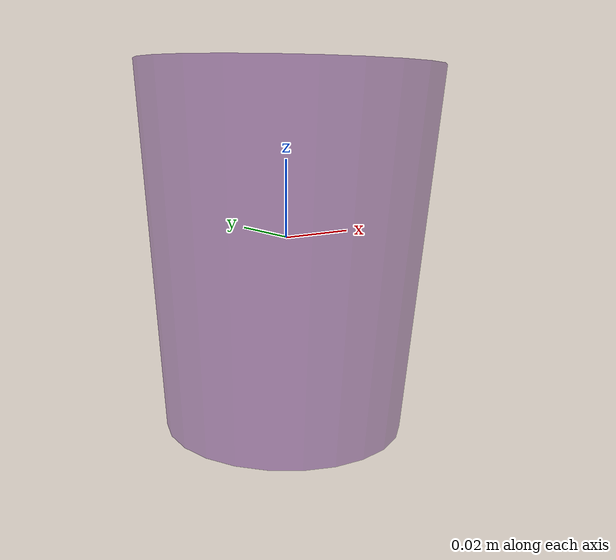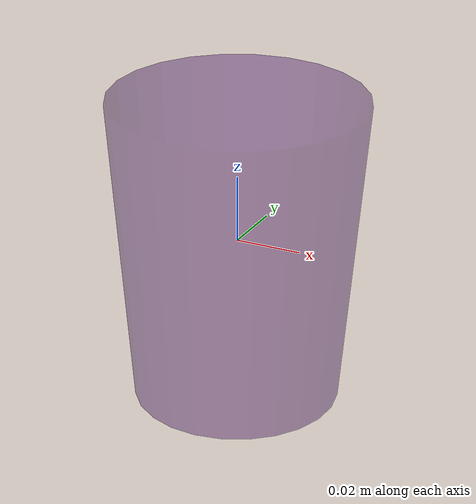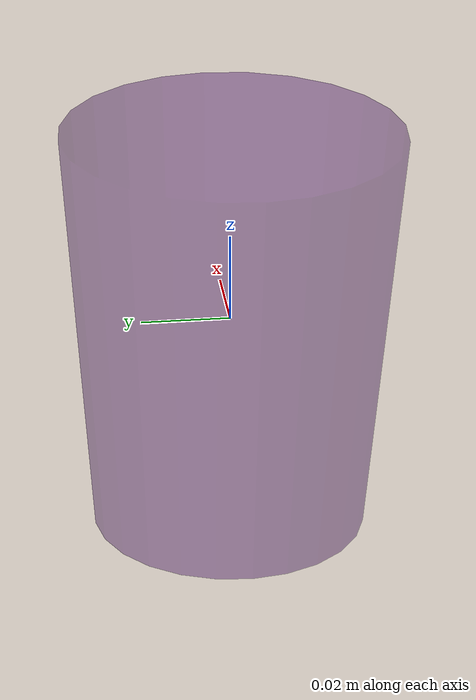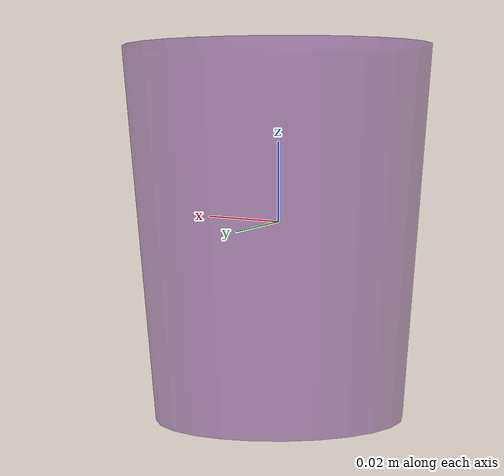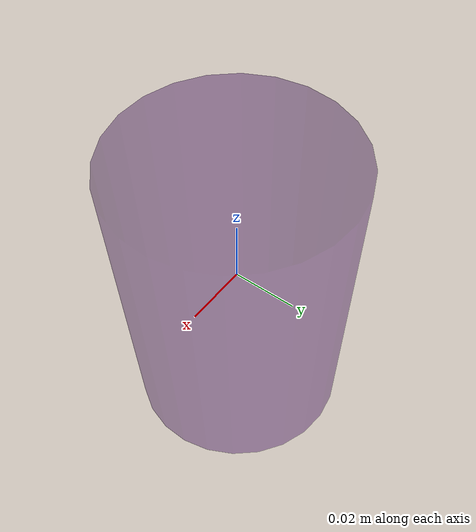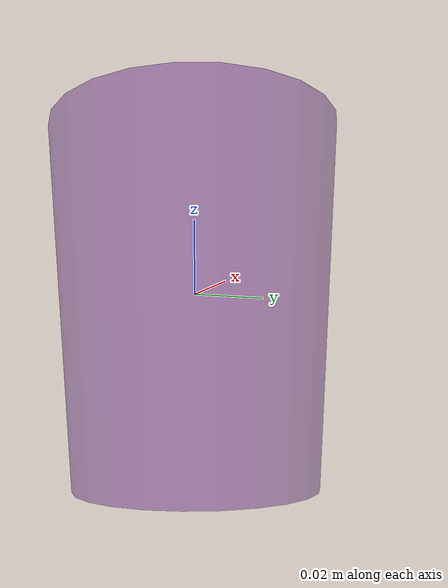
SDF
<?xml version='1.0'?>
<sdf version='1.6'>
  <model name='cup_glass'>
    <static>1</static>
    <link name='link_16'>
      <self_collide>0</self_collide>
      <kinematic>0</kinematic>
      <gravity>1</gravity>
      <inertial>
        <mass>0.3</mass>
        <inertia>
          <ixx>5e-04</ixx>
          <ixy>0</ixy>
          <ixz>0</ixz>
          <iyy>5e-04</iyy>
          <iyz>0</iyz>
          <izz>5e-04</izz>
        </inertia>
      </inertial>
      <visual name='visual'>
        <pose frame=''>0 0 -0.05 0 -0 0</pose>
        <geometry>
          <mesh>
            <uri>model://cup_glass/meshes/cup_glass.dae</uri>
            <scale>1 1 1</scale>
          </mesh>
        </geometry>
        <material>
          <lighting>1</lighting>
          <ambient>0.325 0.023 0.513 1</ambient>
          <diffuse>0.325 0.023 0.513 1</diffuse>
          <specular>0.01 0.01 0.01 1</specular>
          <emissive>0 0 0 1</emissive>
          <shader type='vertex'>
            <normal_map>__default__</normal_map>
          </shader>
          <script>
            <name>ModelPreview_2::link_16::visual_MATERIAL_</name>
            <uri>__default__</uri>
          </script>
        </material>
        <cast_shadows>1</cast_shadows>
        <transparency>0.6</transparency>
      </visual>
      <collision name='collision'>
        <pose frame=''>0 0 -0.05 0 -0 0</pose>
        <geometry>
          <mesh>
            <uri>/home/mamantov/catkin_ws/src/rosie_motion/models/cup_glass/meshes/cup_glass.dae</uri>
          </mesh>
        </geometry>
        <surface>
          <friction>
            <ode>
              <mu>0.2</mu>
              <mu2>0.2</mu2>
            </ode>
          </friction>
          <contact>
            <ode>
              <kp>1000000.0</kp>
              <kd>100.0</kd>
              <max_vel>1.0</max_vel>
              <min_depth>0.002</min_depth>
            </ode>
          </contact>
        </surface>
      </collision>
    </link>
    <allow_auto_disable>1</allow_auto_disable>
  </model>
</sdf>
